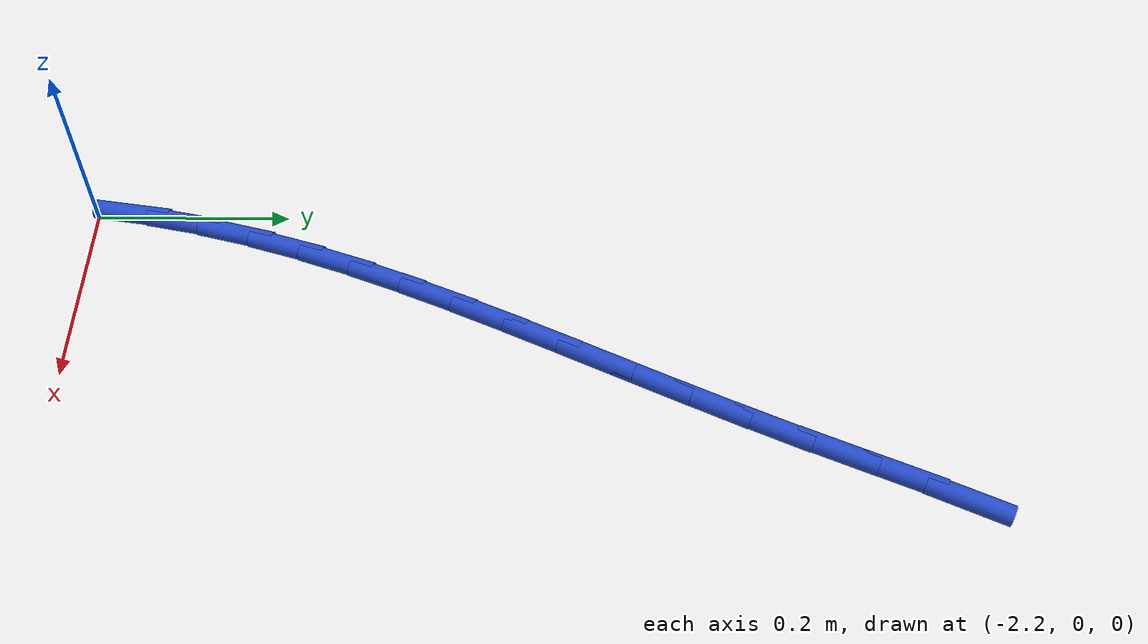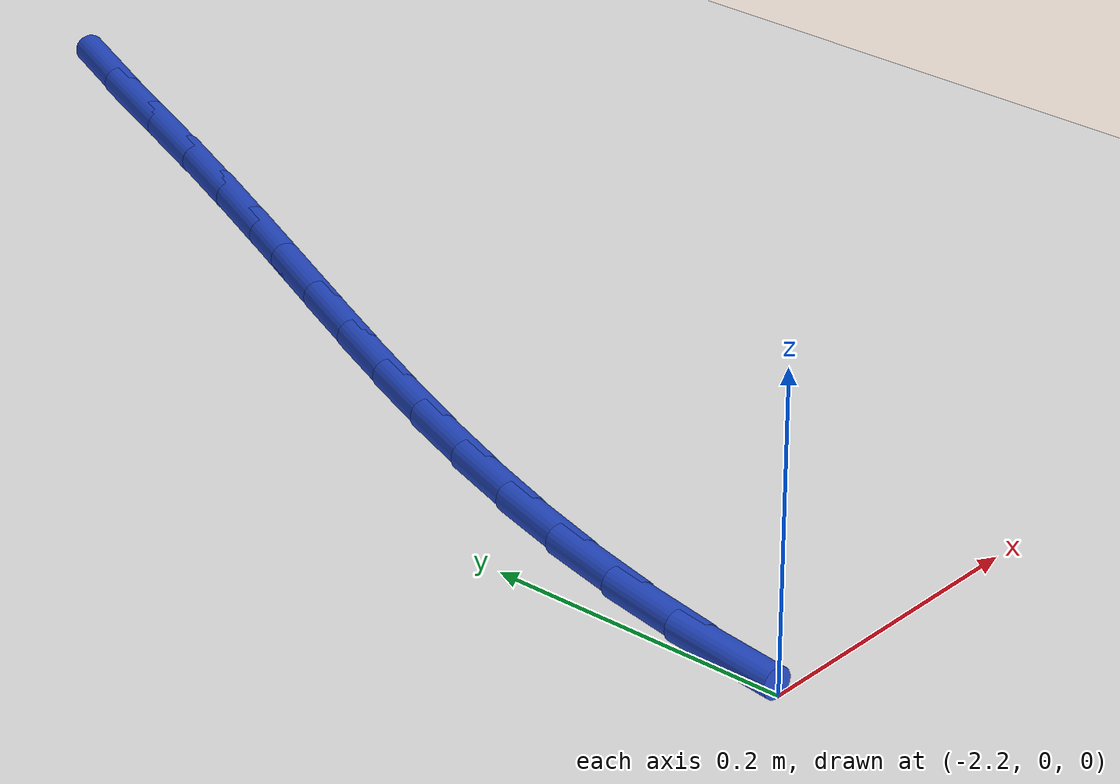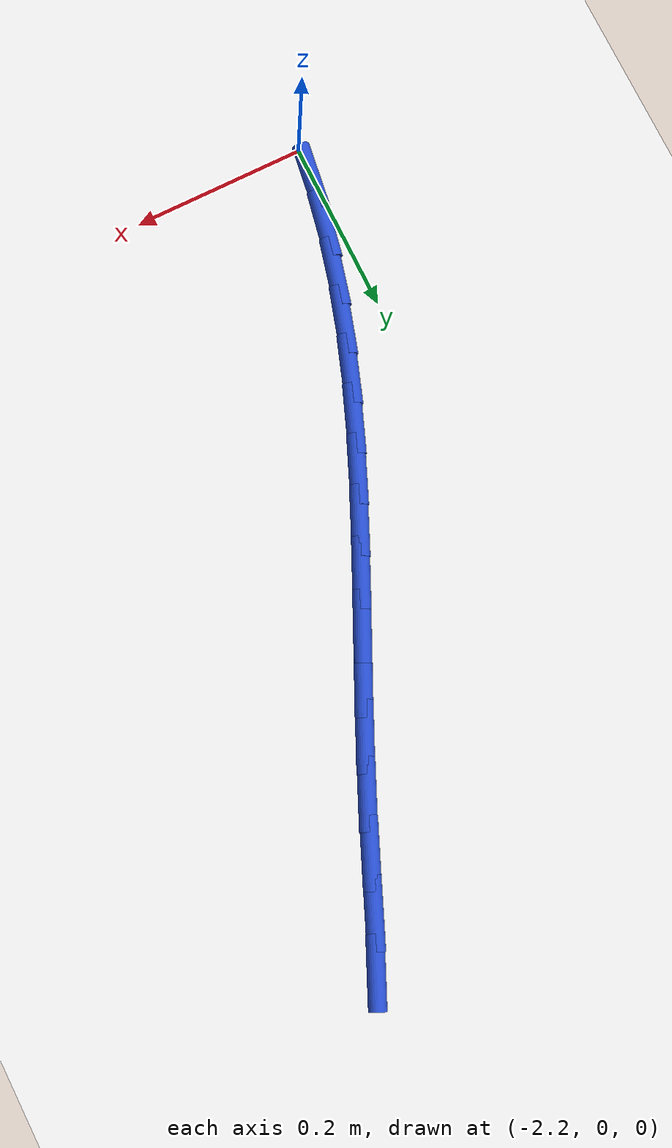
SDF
<sdf version="1.6">
 <world name="default">
  <model name="ground_plane">
   <static>1</static>
   <link name="link">
    <collision name="collision">
     <geometry><plane><normal>0 0 1</normal><size>100 100</size></plane></geometry>
     <surface><friction><ode><mu>100</mu><mu2>50</mu2></ode></friction></surface>
    </collision>
    <visual name="visual">
     <cast_shadows>0</cast_shadows>
     <geometry><plane><normal>0 0 1</normal><size>100 100</size></plane></geometry>
     <material>
      <script><uri>file://media/materials/scripts/gazebo.material</uri><name>Gazebo/WhiteGlow</name></script>
     </material>
    </visual>
   </link>
  </model>
  <model name="line">
   <link name="link_43">
    <pose>-1.869680347394683 0.8528025053790075 0.01 0 1.57 1.142769425686302</pose>
    <collision name="collision">
     <geometry><cylinder><radius>0.01</radius><length>0.08</length></cylinder></geometry>
    </collision>
    <visual name="visual">
     <material>
      <script><name>Gazebo/Blue</name><uri>file://media/materials/scripts/gazebo.material</uri></script>
     </material>
     <geometry><cylinder><radius>0.01</radius><length>0.08</length></cylinder></geometry>
    </visual>
   </link>
   <link name="link_44">
    <pose>-1.8951319873829071 0.7970162637344471 0.01 0 1.57 1.1668875760279032</pose>
    <collision name="collision">
     <geometry><cylinder><radius>0.01</radius><length>0.08</length></cylinder></geometry>
    </collision>
    <visual name="visual">
     <material>
      <script><name>Gazebo/Blue</name><uri>file://media/materials/scripts/gazebo.material</uri></script>
     </material>
     <geometry><cylinder><radius>0.01</radius><length>0.08</length></cylinder></geometry>
    </visual>
   </link>
   <link name="link_45">
    <pose>-1.9195401196164972 0.7399089712525773 0.01 0 1.57 1.1623946155114846</pose>
    <collision name="collision">
     <geometry><cylinder><radius>0.01</radius><length>0.08</length></cylinder></geometry>
    </collision>
    <visual name="visual">
     <material>
      <script><name>Gazebo/Blue</name><uri>file://media/materials/scripts/gazebo.material</uri></script>
     </material>
     <geometry><cylinder><radius>0.01</radius><length>0.08</length></cylinder></geometry>
    </visual>
   </link>
   <link name="link_46">
    <pose>-1.9440571431202218 0.6832526436576633 0.01 0 1.57 1.1452716636253597</pose>
    <collision name="collision">
     <geometry><cylinder><radius>0.01</radius><length>0.08</length></cylinder></geometry>
    </collision>
    <visual name="visual">
     <material>
      <script><name>Gazebo/Blue</name><uri>file://media/materials/scripts/gazebo.material</uri></script>
     </material>
     <geometry><cylinder><radius>0.01</radius><length>0.08</length></cylinder></geometry>
    </visual>
   </link>
   <link name="link_47">
    <pose>-1.9691529421959655 0.6278798623498125 0.01 0 1.57 1.1330680954055352</pose>
    <collision name="collision">
     <geometry><cylinder><radius>0.01</radius><length>0.08</length></cylinder></geometry>
    </collision>
    <visual name="visual">
     <material>
      <script><name>Gazebo/Blue</name><uri>file://media/materials/scripts/gazebo.material</uri></script>
     </material>
     <geometry><cylinder><radius>0.01</radius><length>0.08</length></cylinder></geometry>
    </visual>
   </link>
   <link name="link_48">
    <pose>-1.9945554466529323 0.5736019596717684 0.01 0 1.57 1.1269835803005874</pose>
    <collision name="collision">
     <geometry><cylinder><radius>0.01</radius><length>0.08</length></cylinder></geometry>
    </collision>
    <visual name="visual">
     <material>
      <script><name>Gazebo/Blue</name><uri>file://media/materials/scripts/gazebo.material</uri></script>
     </material>
     <geometry><cylinder><radius>0.01</radius><length>0.08</length></cylinder></geometry>
    </visual>
   </link>
   <link name="link_49">
    <pose>-2.019955265321689 0.520178898219704 0.01 0 1.57 1.1272889816345302</pose>
    <collision name="collision">
     <geometry><cylinder><radius>0.01</radius><length>0.08</length></cylinder></geometry>
    </collision>
    <visual name="visual">
     <material>
      <script><name>Gazebo/Blue</name><uri>file://media/materials/scripts/gazebo.material</uri></script>
     </material>
     <geometry><cylinder><radius>0.01</radius><length>0.08</length></cylinder></geometry>
    </visual>
   </link>
   <link name="link_50">
    <pose>-2.0450430070328003 0.46737064058979105 0.01 0 1.57 1.1342112803041162</pose>
    <collision name="collision">
     <geometry><cylinder><radius>0.01</radius><length>0.08</length></cylinder></geometry>
    </collision>
    <visual name="visual">
     <material>
      <script><name>Gazebo/Blue</name><uri>file://media/materials/scripts/gazebo.material</uri></script>
     </material>
     <geometry><cylinder><radius>0.01</radius><length>0.08</length></cylinder></geometry>
    </visual>
   </link>
   <link name="link_51">
    <pose>-2.069509280616832 0.414937149378203 0.01 0 1.57 1.1479269561798369</pose>
    <collision name="collision">
     <geometry><cylinder><radius>0.01</radius><length>0.08</length></cylinder></geometry>
    </collision>
    <visual name="visual">
     <material>
      <script><name>Gazebo/Blue</name><uri>file://media/materials/scripts/gazebo.material</uri></script>
     </material>
     <geometry><cylinder><radius>0.01</radius><length>0.08</length></cylinder></geometry>
    </visual>
   </link>
   <link name="link_52">
    <pose>-2.093044694904349 0.36263838718111174 0.01 0 1.57 1.168546978565671</pose>
    <collision name="collision">
     <geometry><cylinder><radius>0.01</radius><length>0.08</length></cylinder></geometry>
    </collision>
    <visual name="visual">
     <material>
      <script><name>Gazebo/Blue</name><uri>file://media/materials/scripts/gazebo.material</uri></script>
     </material>
     <geometry><cylinder><radius>0.01</radius><length>0.08</length></cylinder></geometry>
    </visual>
   </link>
   <link name="link_53">
    <pose>-2.115339858725917 0.3102343165946908 0.01 0 1.57 1.1960926387833575</pose>
    <collision name="collision">
     <geometry><cylinder><radius>0.01</radius><length>0.08</length></cylinder></geometry>
    </collision>
    <visual name="visual">
     <material>
      <script><name>Gazebo/Blue</name><uri>file://media/materials/scripts/gazebo.material</uri></script>
     </material>
     <geometry><cylinder><radius>0.01</radius><length>0.08</length></cylinder></geometry>
    </visual>
   </link>
   <link name="link_54">
    <pose>-2.1360853809121023 0.25748490021511206 0.01 0 1.57 1.230463015592791</pose>
    <collision name="collision">
     <geometry><cylinder><radius>0.01</radius><length>0.08</length></cylinder></geometry>
    </collision>
    <visual name="visual">
     <material>
      <script><name>Gazebo/Blue</name><uri>file://media/materials/scripts/gazebo.material</uri></script>
     </material>
     <geometry><cylinder><radius>0.01</radius><length>0.08</length></cylinder></geometry>
    </visual>
   </link>
   <link name="link_55">
    <pose>-2.154971870293468 0.20415010063854866 0.01 0 1.57 1.2713972528087294</pose>
    <collision name="collision">
     <geometry><cylinder><radius>0.01</radius><length>0.08</length></cylinder></geometry>
    </collision>
    <visual name="visual">
     <material>
      <script><name>Gazebo/Blue</name><uri>file://media/materials/scripts/gazebo.material</uri></script>
     </material>
     <geometry><cylinder><radius>0.01</radius><length>0.08</length></cylinder></geometry>
    </visual>
   </link>
   <link name="link_56">
    <pose>-2.1716899357005817 0.14998988046117284 0.01 0 1.57 1.3184379345560975</pose>
    <collision name="collision">
     <geometry><cylinder><radius>0.01</radius><length>0.08</length></cylinder></geometry>
    </collision>
    <visual name="visual">
     <material>
      <script><name>Gazebo/Blue</name><uri>file://media/materials/scripts/gazebo.material</uri></script>
     </material>
     <geometry><cylinder><radius>0.01</radius><length>0.08</length></cylinder></geometry>
    </visual>
   </link>
   <link name="link_57">
    <pose>-2.1859301859640095 0.09476420227915792 0.01 0 1.57 1.3707283722866566</pose>
    <collision name="collision">
     <geometry><cylinder><radius>0.01</radius><length>0.08</length></cylinder></geometry>
    </collision>
    <visual name="visual">
     <material>
      <script><name>Gazebo/Blue</name><uri>file://media/materials/scripts/gazebo.material</uri></script>
     </material>
     <geometry><cylinder><radius>0.01</radius><length>0.08</length></cylinder></geometry>
    </visual>
   </link>
   <link name="link_58">
    <pose>-2.1973908238294784 0.038246825844349804 0.01 0 1.57 1.4243136502835192</pose>
    <collision name="collision">
     <geometry><cylinder><radius>0.01</radius><length>0.08</length></cylinder></geometry>
    </collision>
    <visual name="visual">
     <material>
      <script><name>Gazebo/Blue</name><uri>file://media/materials/scripts/gazebo.material</uri></script>
     </material>
     <geometry><cylinder><radius>0.01</radius><length>0.08</length></cylinder></geometry>
    </visual>
   </link>
  </model>
 </world>
</sdf>
